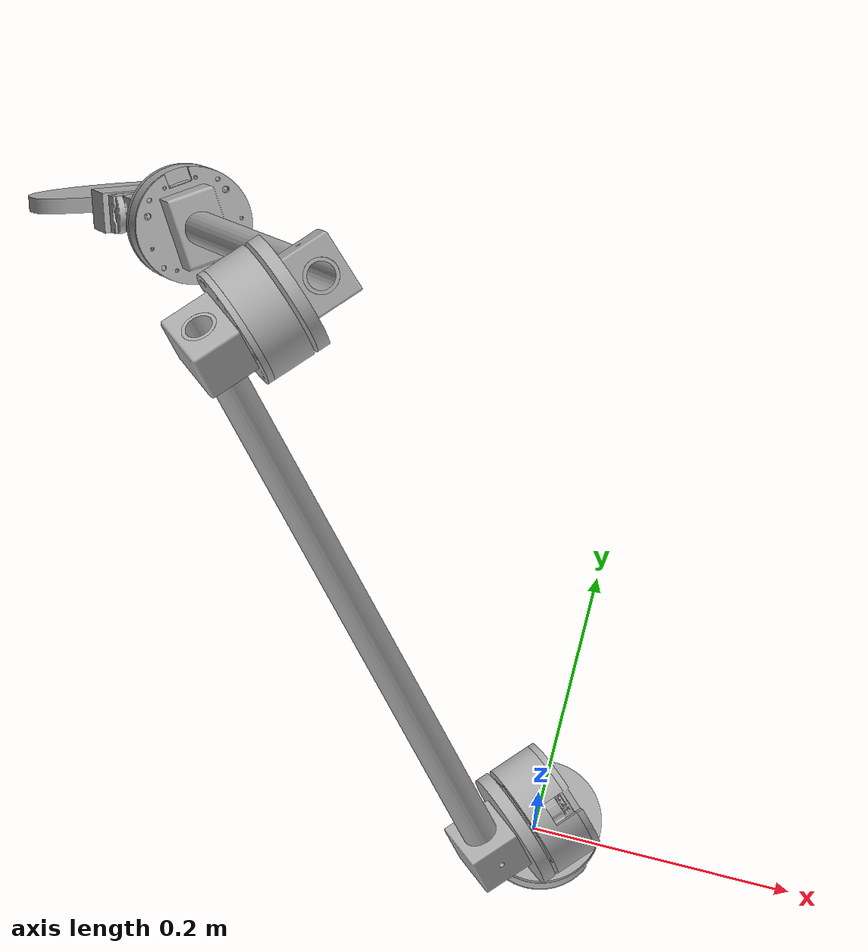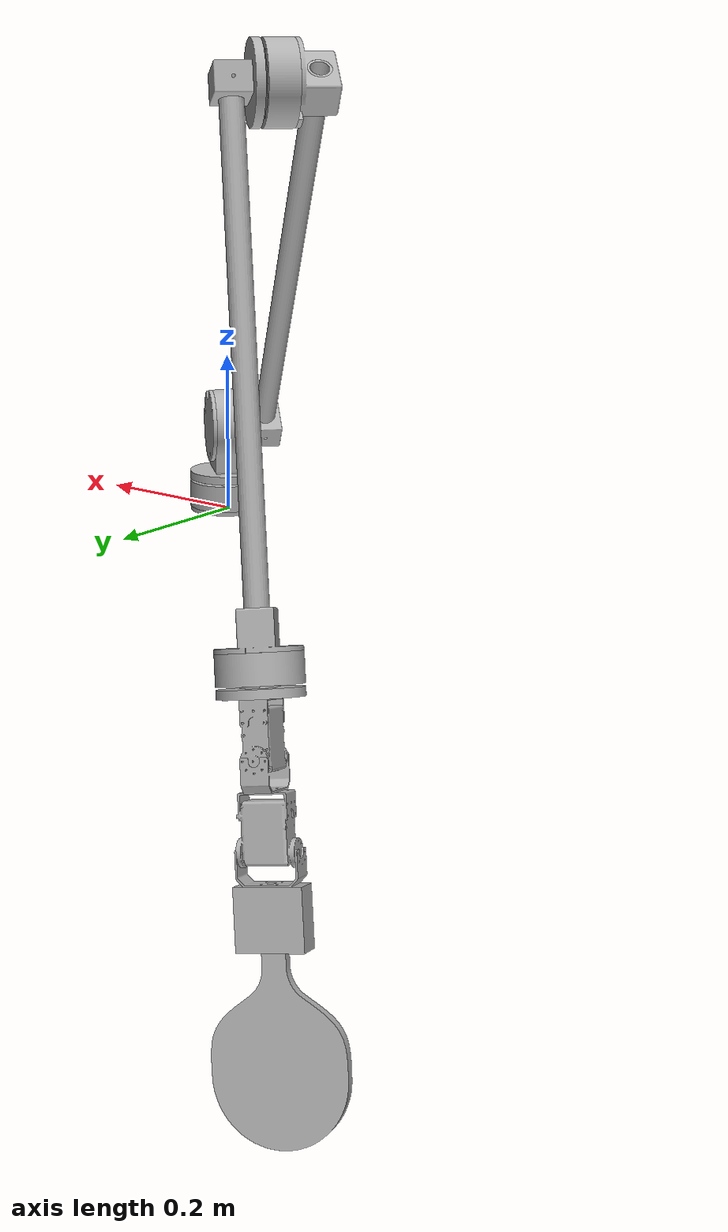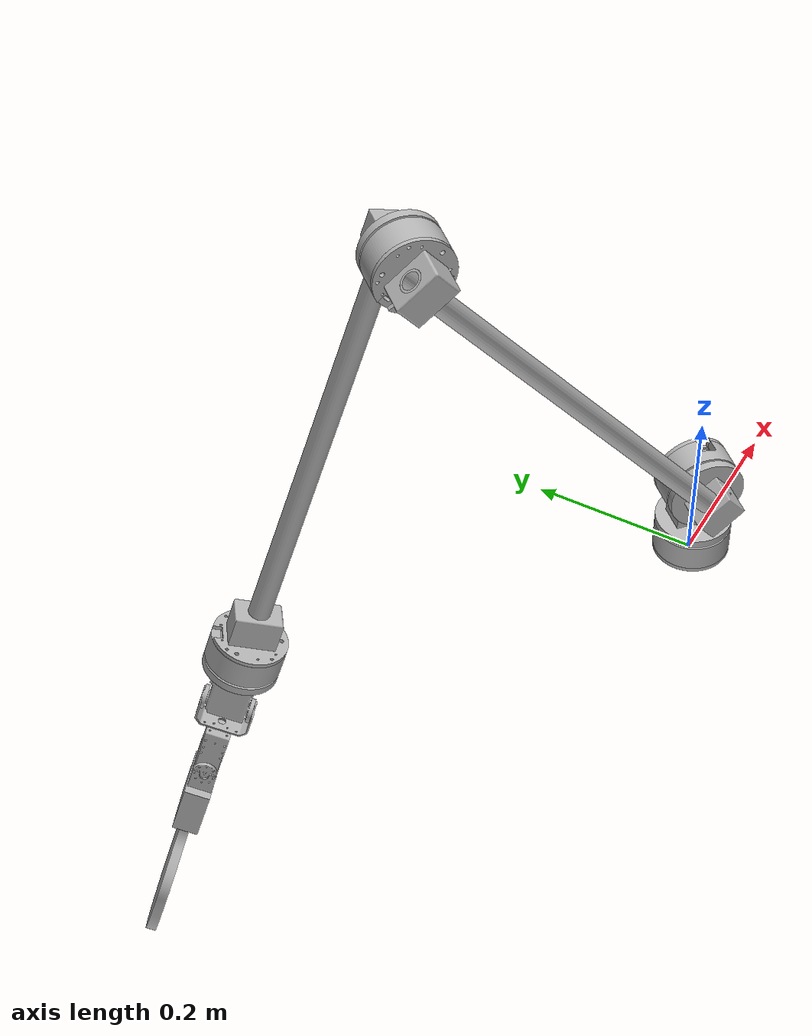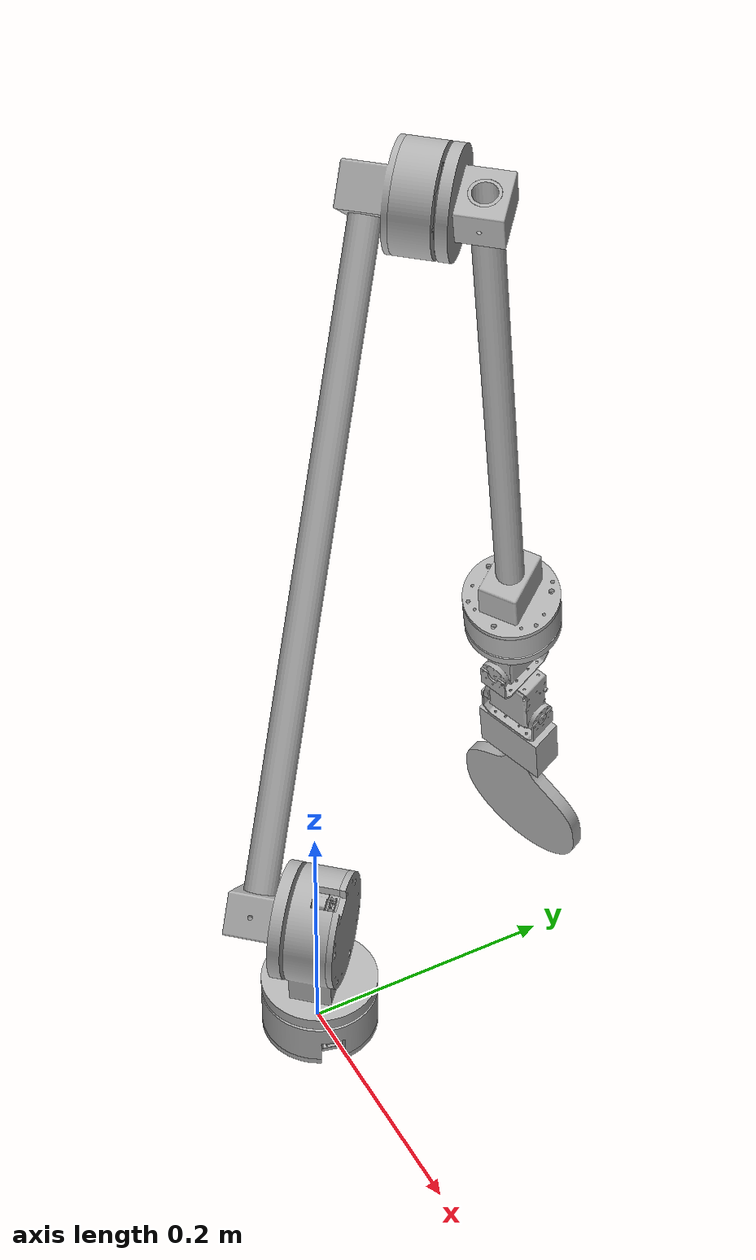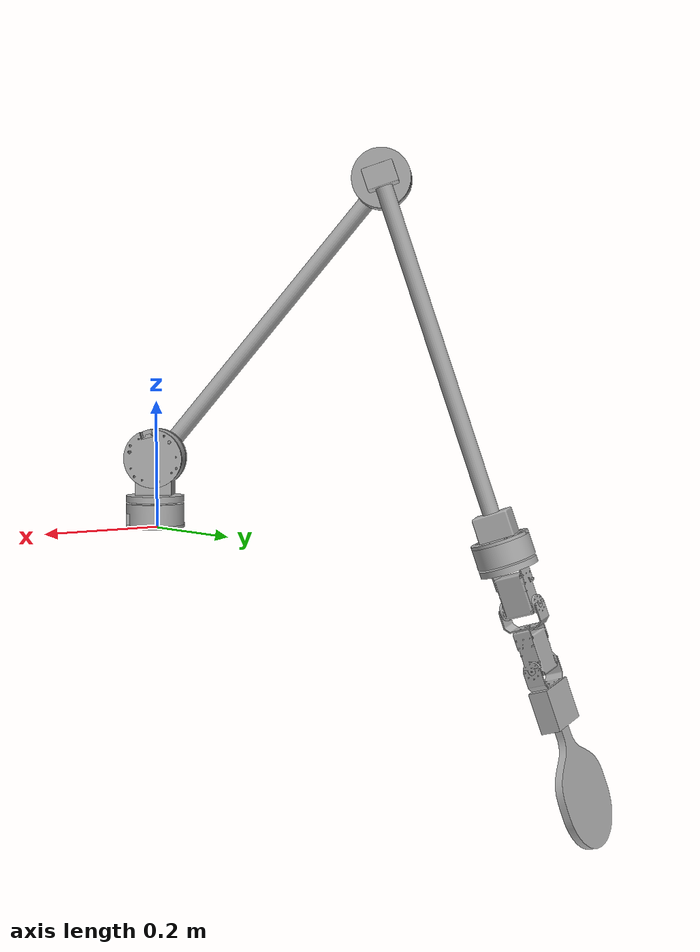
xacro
<?xml version="1.0" ?>
<robot name="assembly_fresh" xmlns:xacro="http://www.ros.org/wiki/xacro">

<xacro:include filename="$(find assembly_fresh_description)/urdf/materials.xacro" />
<xacro:include filename="$(find assembly_fresh_description)/urdf/assembly_fresh.trans" />
<xacro:include filename="$(find assembly_fresh_description)/urdf/assembly_fresh.gazebo" />
<link name="base_link">
  <inertial>
    <origin xyz="0.0025863608370087143 0.0003591420593558797 0.0025" rpy="0 0 0"/>
    <mass value="0.24711216388615834"/>
    <inertia ixx="0.000134" iyy="0.000121" izz="0.000254" ixy="-3e-06" iyz="-0.0" ixz="-0.0"/>
  </inertial>
  <visual>
    <origin xyz="0 0 0" rpy="0 0 0"/>
    <geometry>
      <mesh filename="package://assembly_fresh_description/meshes/base_link.stl" scale="0.001 0.001 0.001"/>
    </geometry>
    <material name="silver"/>
  </visual>
  <collision>
    <origin xyz="0 0 0" rpy="0 0 0"/>
    <geometry>
      <mesh filename="package://assembly_fresh_description/meshes/base_link.stl" scale="0.001 0.001 0.001"/>
    </geometry>
  </collision>
</link>

<link name="base_plate_1_1">
  <inertial>
    <origin xyz="-0.0020763445014935706 0.0005204160767345057 0.01704468393800585" rpy="0 0 0"/>
    <mass value="0.6163205395344308"/>
    <inertia ixx="0.00061" iyy="0.000561" izz="0.001055" ixy="-1.3e-05" iyz="2e-06" ixz="-8e-06"/>
  </inertial>
  <visual>
    <origin xyz="-0.004 -0.0 -0.005" rpy="0 0 0"/>
    <geometry>
      <mesh filename="package://assembly_fresh_description/meshes/base_plate_1_1.stl" scale="0.001 0.001 0.001"/>
    </geometry>
    <material name="silver"/>
  </visual>
  <collision>
    <origin xyz="-0.004 -0.0 -0.005" rpy="0 0 0"/>
    <geometry>
      <mesh filename="package://assembly_fresh_description/meshes/base_plate_1_1.stl" scale="0.001 0.001 0.001"/>
    </geometry>
  </collision>
</link>

<link name="CyberGearmotor0_1">
  <inertial>
    <origin xyz="0.000365315533304841 -5.172106987113345e-05 0.02003417131152461" rpy="0 0 0"/>
    <mass value="0.8824867869493727"/>
    <inertia ixx="0.000352" iyy="0.000363" izz="0.000583" ixy="2e-06" iyz="0.0" ixz="1e-06"/>
  </inertial>
  <visual>
    <origin xyz="-0.004 -0.0 -0.005" rpy="0 0 0"/>
    <geometry>
      <mesh filename="package://assembly_fresh_description/meshes/CyberGearmotor0_1.stl" scale="0.001 0.001 0.001"/>
    </geometry>
    <material name="silver"/>
  </visual>
  <collision>
    <origin xyz="-0.004 -0.0 -0.005" rpy="0 0 0"/>
    <geometry>
      <mesh filename="package://assembly_fresh_description/meshes/CyberGearmotor0_1.stl" scale="0.001 0.001 0.001"/>
    </geometry>
  </collision>
</link>

<link name="link1_plate_1">
  <inertial>
    <origin xyz="5.960401183030539e-11 1.225297641127554e-14 0.004999999999997562" rpy="0 0 0"/>
    <mass value="0.5059761078295193"/>
    <inertia ixx="0.000282" iyy="0.000282" izz="0.000555" ixy="-0.0" iyz="-0.0" ixz="-0.0"/>
  </inertial>
  <visual>
    <origin xyz="-0.004 0.0 -0.0413" rpy="0 0 0"/>
    <geometry>
      <mesh filename="package://assembly_fresh_description/meshes/link1_plate_1.stl" scale="0.001 0.001 0.001"/>
    </geometry>
    <material name="silver"/>
  </visual>
  <collision>
    <origin xyz="-0.004 0.0 -0.0413" rpy="0 0 0"/>
    <geometry>
      <mesh filename="package://assembly_fresh_description/meshes/link1_plate_1.stl" scale="0.001 0.001 0.001"/>
    </geometry>
  </collision>
</link>

<link name="link2_mount_1">
  <inertial>
    <origin xyz="-0.00022323700771801226 -0.000465305564484666 0.04377354303706674" rpy="0 0 0"/>
    <mass value="0.833278415256699"/>
    <inertia ixx="0.001269" iyy="0.00122" izz="0.000701" ixy="-0.00027" iyz="1.9e-05" ixz="6e-06"/>
  </inertial>
  <visual>
    <origin xyz="-0.004 0.0 -0.0513" rpy="0 0 0"/>
    <geometry>
      <mesh filename="package://assembly_fresh_description/meshes/link2_mount_1.stl" scale="0.001 0.001 0.001"/>
    </geometry>
    <material name="silver"/>
  </visual>
  <collision>
    <origin xyz="-0.004 0.0 -0.0513" rpy="0 0 0"/>
    <geometry>
      <mesh filename="package://assembly_fresh_description/meshes/link2_mount_1.stl" scale="0.001 0.001 0.001"/>
    </geometry>
  </collision>
</link>

<link name="link3_mount_v2_1">
  <inertial>
    <origin xyz="0.014798839950544904 -0.0134060990606749 1.3164900525275414e-07" rpy="0 0 0"/>
    <mass value="0.3794232112987054"/>
    <inertia ixx="0.000125" iyy="0.000122" izz="0.000158" ixy="-1.5e-05" iyz="-1.5e-05" ixz="-1.3e-05"/>
  </inertial>
  <visual>
    <origin xyz="-0.025682 0.019724 -0.110217" rpy="0 0 0"/>
    <geometry>
      <mesh filename="package://assembly_fresh_description/meshes/link3_mount_v2_1.stl" scale="0.001 0.001 0.001"/>
    </geometry>
    <material name="silver"/>
  </visual>
  <collision>
    <origin xyz="-0.025682 0.019724 -0.110217" rpy="0 0 0"/>
    <geometry>
      <mesh filename="package://assembly_fresh_description/meshes/link3_mount_v2_1.stl" scale="0.001 0.001 0.001"/>
    </geometry>
  </collision>
</link>

<link name="link3_1">
  <inertial>
    <origin xyz="-0.06643377946131569 -0.0733351225065976 0.28321105107869426" rpy="0 0 0"/>
    <mass value="1.01226527272846"/>
    <inertia ixx="0.028955" iyy="0.02863" izz="0.003441" ixy="-0.00164" iyz="0.006991" ixz="0.006333"/>
  </inertial>
  <visual>
    <origin xyz="-0.044315 0.028945 -0.093972" rpy="0 0 0"/>
    <geometry>
      <mesh filename="package://assembly_fresh_description/meshes/link3_1.stl" scale="0.001 0.001 0.001"/>
    </geometry>
    <material name="silver"/>
  </visual>
  <collision>
    <origin xyz="-0.044315 0.028945 -0.093972" rpy="0 0 0"/>
    <geometry>
      <mesh filename="package://assembly_fresh_description/meshes/link3_1.stl" scale="0.001 0.001 0.001"/>
    </geometry>
  </collision>
</link>

<link name="link4_plate_1">
  <inertial>
    <origin xyz="-0.0007882741415668887 0.009926271836401573 -0.018085756763864813" rpy="0 0 0"/>
    <mass value="0.76603914839681"/>
    <inertia ixx="0.000447" iyy="0.000425" izz="0.000456" ixy="-5.9e-05" iyz="-2.5e-05" ixz="-2e-05"/>
  </inertial>
  <visual>
    <origin xyz="0.088553 0.175615 -0.660394" rpy="0 0 0"/>
    <geometry>
      <mesh filename="package://assembly_fresh_description/meshes/link4_plate_1.stl" scale="0.001 0.001 0.001"/>
    </geometry>
    <material name="silver"/>
  </visual>
  <collision>
    <origin xyz="0.088553 0.175615 -0.660394" rpy="0 0 0"/>
    <geometry>
      <mesh filename="package://assembly_fresh_description/meshes/link4_plate_1.stl" scale="0.001 0.001 0.001"/>
    </geometry>
  </collision>
</link>

<link name="CyberGearmotor2_1">
  <inertial>
    <origin xyz="-0.01508924516183388 0.013184424295532016 -8.272998982084001e-05" rpy="0 0 0"/>
    <mass value="0.8824867869493727"/>
    <inertia ixx="0.00048" iyy="0.000456" izz="0.000362" ixy="-0.000114" iyz="-2e-06" ixz="-2e-06"/>
  </inertial>
  <visual>
    <origin xyz="0.102807 0.154114 -0.642176" rpy="0 0 0"/>
    <geometry>
      <mesh filename="package://assembly_fresh_description/meshes/CyberGearmotor2_1.stl" scale="0.001 0.001 0.001"/>
    </geometry>
    <material name="silver"/>
  </visual>
  <collision>
    <origin xyz="0.102807 0.154114 -0.642176" rpy="0 0 0"/>
    <geometry>
      <mesh filename="package://assembly_fresh_description/meshes/CyberGearmotor2_1.stl" scale="0.001 0.001 0.001"/>
    </geometry>
  </collision>
</link>

<link name="link4_mount_1">
  <inertial>
    <origin xyz="-0.012061280691187726 0.011635227022074784 0.00017645497799034793" rpy="0 0 0"/>
    <mass value="0.642760749698807"/>
    <inertia ixx="0.000885" iyy="0.000837" izz="0.000607" ixy="-0.000242" iyz="3e-06" ixz="3e-06"/>
  </inertial>
  <visual>
    <origin xyz="0.102807 0.154114 -0.642176" rpy="0 0 0"/>
    <geometry>
      <mesh filename="package://assembly_fresh_description/meshes/link4_mount_1.stl" scale="0.001 0.001 0.001"/>
    </geometry>
    <material name="silver"/>
  </visual>
  <collision>
    <origin xyz="0.102807 0.154114 -0.642176" rpy="0 0 0"/>
    <geometry>
      <mesh filename="package://assembly_fresh_description/meshes/link4_mount_1.stl" scale="0.001 0.001 0.001"/>
    </geometry>
  </collision>
</link>

<link name="link4_plate1_1">
  <inertial>
    <origin xyz="-0.003705573041466792 0.0033565001714916665 7.96668527813793e-08" rpy="0 0 0"/>
    <mass value="0.5039448046653104"/>
    <inertia ixx="0.000429" iyy="0.000402" izz="0.00028" ixy="-0.000135" iyz="0.0" ixz="0.0"/>
  </inertial>
  <visual>
    <origin xyz="0.129858 0.129608 -0.642176" rpy="0 0 0"/>
    <geometry>
      <mesh filename="package://assembly_fresh_description/meshes/link4_plate1_1.stl" scale="0.001 0.001 0.001"/>
    </geometry>
    <material name="silver"/>
  </visual>
  <collision>
    <origin xyz="0.129858 0.129608 -0.642176" rpy="0 0 0"/>
    <geometry>
      <mesh filename="package://assembly_fresh_description/meshes/link4_plate1_1.stl" scale="0.001 0.001 0.001"/>
    </geometry>
  </collision>
</link>

<link name="link5_plate_yz_plane_1">
  <inertial>
    <origin xyz="0.008044899453001686 0.00867064761752634 0.0046286023266077225" rpy="0 0 0"/>
    <mass value="0.7598819212290874"/>
    <inertia ixx="0.000459" iyy="0.000477" izz="0.000385" ixy="2.1e-05" iyz="2.3e-05" ixz="4.6e-05"/>
  </inertial>
  <visual>
    <origin xyz="0.511008 0.505669 -0.410122" rpy="0 0 0"/>
    <geometry>
      <mesh filename="package://assembly_fresh_description/meshes/link5_plate_yz_plane_1.stl" scale="0.001 0.001 0.001"/>
    </geometry>
    <material name="silver"/>
  </visual>
  <collision>
    <origin xyz="0.511008 0.505669 -0.410122" rpy="0 0 0"/>
    <geometry>
      <mesh filename="package://assembly_fresh_description/meshes/link5_plate_yz_plane_1.stl" scale="0.001 0.001 0.001"/>
    </geometry>
  </collision>
</link>

<link name="CyberGearmotor3_1">
  <inertial>
    <origin xyz="-0.012523832089333498 -0.013637941193536784 -0.007658944044402927" rpy="0 0 0"/>
    <mass value="0.8824867869493727"/>
    <inertia ixx="0.000445" iyy="0.000464" izz="0.000389" ixy="9.2e-05" iyz="6e-05" ixz="5.8e-05"/>
  </inertial>
  <visual>
    <origin xyz="0.514088 0.509068 -0.408131" rpy="0 0 0"/>
    <geometry>
      <mesh filename="package://assembly_fresh_description/meshes/CyberGearmotor3_1.stl" scale="0.001 0.001 0.001"/>
    </geometry>
    <material name="silver"/>
  </visual>
  <collision>
    <origin xyz="0.514088 0.509068 -0.408131" rpy="0 0 0"/>
    <geometry>
      <mesh filename="package://assembly_fresh_description/meshes/CyberGearmotor3_1.stl" scale="0.001 0.001 0.001"/>
    </geometry>
  </collision>
</link>

<link name="RDS5160_motor0_1">
  <inertial>
    <origin xyz="-0.025051801374162186 -0.027899121010842354 -0.01697952727207397" rpy="0 0 0"/>
    <mass value="0.5371425416182003"/>
    <inertia ixx="0.000333" iyy="0.000336" izz="0.000307" ixy="-9.7e-05" iyz="-4.5e-05" ixz="-5e-06"/>
  </inertial>
  <visual>
    <origin xyz="0.542725 0.54068 -0.389616" rpy="0 0 0"/>
    <geometry>
      <mesh filename="package://assembly_fresh_description/meshes/RDS5160_motor0_1.stl" scale="0.001 0.001 0.001"/>
    </geometry>
    <material name="silver"/>
  </visual>
  <collision>
    <origin xyz="0.542725 0.54068 -0.389616" rpy="0 0 0"/>
    <geometry>
      <mesh filename="package://assembly_fresh_description/meshes/RDS5160_motor0_1.stl" scale="0.001 0.001 0.001"/>
    </geometry>
  </collision>
</link>

<link name="link5_plate1_1">
  <inertial>
    <origin xyz="-0.0030797484843688716 -0.0033992812232509495 -0.0019912933422427948" rpy="0 0 0"/>
    <mass value="0.5059456318485572"/>
    <inertia ixx="0.000385" iyy="0.000408" izz="0.000325" ixy="0.000114" iyz="7.4e-05" ixz="6.7e-05"/>
  </inertial>
  <visual>
    <origin xyz="0.536566 0.533882 -0.393598" rpy="0 0 0"/>
    <geometry>
      <mesh filename="package://assembly_fresh_description/meshes/link5_plate1_1.stl" scale="0.001 0.001 0.001"/>
    </geometry>
    <material name="silver"/>
  </visual>
  <collision>
    <origin xyz="0.536566 0.533882 -0.393598" rpy="0 0 0"/>
    <geometry>
      <mesh filename="package://assembly_fresh_description/meshes/link5_plate1_1.stl" scale="0.001 0.001 0.001"/>
    </geometry>
  </collision>
</link>

<link name="RDS5160_motor1_1">
  <inertial>
    <origin xyz="-0.020428397606103044 -0.03260690591489335 -0.014617587981063329" rpy="0 0 0"/>
    <mass value="0.5371425416182003"/>
    <inertia ixx="0.000315" iyy="0.00026" izz="0.000401" ixy="-3.1e-05" iyz="-4e-05" ixz="-6.4e-05"/>
  </inertial>
  <visual>
    <origin xyz="0.598143 0.608781 -0.353991" rpy="0 0 0"/>
    <geometry>
      <mesh filename="package://assembly_fresh_description/meshes/RDS5160_motor1_1.stl" scale="0.001 0.001 0.001"/>
    </geometry>
    <material name="silver"/>
  </visual>
  <collision>
    <origin xyz="0.598143 0.608781 -0.353991" rpy="0 0 0"/>
    <geometry>
      <mesh filename="package://assembly_fresh_description/meshes/RDS5160_motor1_1.stl" scale="0.001 0.001 0.001"/>
    </geometry>
  </collision>
</link>

<link name="RDS5160_support_bracket_0_1">
  <inertial>
    <origin xyz="-0.026141794490403214 -0.022012905197835164 0.021400460668582477" rpy="0 0 0"/>
    <mass value="0.0542063443864775"/>
    <inertia ixx="3.6e-05" iyy="4.1e-05" izz="1.7e-05" ixy="-3e-06" iyz="3e-06" ixz="1.2e-05"/>
  </inertial>
  <visual>
    <origin xyz="0.566822 0.578797 -0.336256" rpy="0 0 0"/>
    <geometry>
      <mesh filename="package://assembly_fresh_description/meshes/RDS5160_support_bracket_0_1.stl" scale="0.001 0.001 0.001"/>
    </geometry>
    <material name="silver"/>
  </visual>
  <collision>
    <origin xyz="0.566822 0.578797 -0.336256" rpy="0 0 0"/>
    <geometry>
      <mesh filename="package://assembly_fresh_description/meshes/RDS5160_support_bracket_0_1.stl" scale="0.001 0.001 0.001"/>
    </geometry>
  </collision>
</link>

<link name="RDS5160_support_bracket_1_1">
  <inertial>
    <origin xyz="-0.03166289240566722 0.004815278230617781 -0.024498610861725945" rpy="0 0 0"/>
    <mass value="0.0542063443864775"/>
    <inertia ixx="2.5e-05" iyy="3e-05" izz="3.9e-05" ixy="1.4e-05" iyz="5e-06" ixz="-7e-06"/>
  </inertial>
  <visual>
    <origin xyz="0.605775 0.676933 -0.340655" rpy="0 0 0"/>
    <geometry>
      <mesh filename="package://assembly_fresh_description/meshes/RDS5160_support_bracket_1_1.stl" scale="0.001 0.001 0.001"/>
    </geometry>
    <material name="silver"/>
  </visual>
  <collision>
    <origin xyz="0.605775 0.676933 -0.340655" rpy="0 0 0"/>
    <geometry>
      <mesh filename="package://assembly_fresh_description/meshes/RDS5160_support_bracket_1_1.stl" scale="0.001 0.001 0.001"/>
    </geometry>
  </collision>
</link>

<link name="paddle_bracket_1">
  <inertial>
    <origin xyz="-0.009877082480452049 -0.021828414084217873 -0.021500211797829127" rpy="0 0 0"/>
    <mass value="1.0732449684914942"/>
    <inertia ixx="0.000678" iyy="0.000648" izz="0.000782" ixy="0.000138" iyz="-5.8e-05" ixz="-0.000151"/>
  </inertial>
  <visual>
    <origin xyz="0.640564 0.679026 -0.309352" rpy="0 0 0"/>
    <geometry>
      <mesh filename="package://assembly_fresh_description/meshes/paddle_bracket_1.stl" scale="0.001 0.001 0.001"/>
    </geometry>
    <material name="silver"/>
  </visual>
  <collision>
    <origin xyz="0.640564 0.679026 -0.309352" rpy="0 0 0"/>
    <geometry>
      <mesh filename="package://assembly_fresh_description/meshes/paddle_bracket_1.stl" scale="0.001 0.001 0.001"/>
    </geometry>
  </collision>
</link>

<link name="paddle_1">
  <inertial>
    <origin xyz="-0.048116929351046944 -0.10633715617695472 -0.10473577583411162" rpy="0 0 0"/>
    <mass value="2.095651286416409"/>
    <inertia ixx="0.007337" iyy="0.005297" izz="0.006128" ixy="-0.000282" iyz="-0.002653" ixz="-0.00191"/>
  </inertial>
  <visual>
    <origin xyz="0.644228 0.687123 -0.301377" rpy="0 0 0"/>
    <geometry>
      <mesh filename="package://assembly_fresh_description/meshes/paddle_1.stl" scale="0.001 0.001 0.001"/>
    </geometry>
    <material name="silver"/>
  </visual>
  <collision>
    <origin xyz="0.644228 0.687123 -0.301377" rpy="0 0 0"/>
    <geometry>
      <mesh filename="package://assembly_fresh_description/meshes/paddle_1.stl" scale="0.001 0.001 0.001"/>
    </geometry>
  </collision>
</link>

<link name="link5_mount_1">
  <inertial>
    <origin xyz="-0.009899179137885294 -0.011601445108479047 -0.006947504074321209" rpy="0 0 0"/>
    <mass value="0.6542346841284543"/>
    <inertia ixx="0.000821" iyy="0.000857" izz="0.000704" ixy="0.00021" iyz="0.000141" ixz="0.00012"/>
  </inertial>
  <visual>
    <origin xyz="0.514088 0.509068 -0.408131" rpy="0 0 0"/>
    <geometry>
      <mesh filename="package://assembly_fresh_description/meshes/link5_mount_1.stl" scale="0.001 0.001 0.001"/>
    </geometry>
    <material name="silver"/>
  </visual>
  <collision>
    <origin xyz="0.514088 0.509068 -0.408131" rpy="0 0 0"/>
    <geometry>
      <mesh filename="package://assembly_fresh_description/meshes/link5_mount_1.stl" scale="0.001 0.001 0.001"/>
    </geometry>
  </collision>
</link>

<link name="link3_plate_1">
  <inertial>
    <origin xyz="0.0037054771091581326 -0.00335711935758223 1.5185625962255145e-07" rpy="0 0 0"/>
    <mass value="0.5079425709661909"/>
    <inertia ixx="0.000435" iyy="0.000408" izz="0.000284" ixy="-0.000137" iyz="-0.0" ixz="-0.0"/>
  </inertial>
  <visual>
    <origin xyz="-0.018271 0.01301 -0.110217" rpy="0 0 0"/>
    <geometry>
      <mesh filename="package://assembly_fresh_description/meshes/link3_plate_1.stl" scale="0.001 0.001 0.001"/>
    </geometry>
    <material name="silver"/>
  </visual>
  <collision>
    <origin xyz="-0.018271 0.01301 -0.110217" rpy="0 0 0"/>
    <geometry>
      <mesh filename="package://assembly_fresh_description/meshes/link3_plate_1.stl" scale="0.001 0.001 0.001"/>
    </geometry>
  </collision>
</link>

<link name="link4_plate1_mount_1">
  <inertial>
    <origin xyz="-0.014798917960383517 0.013406499658877052 8.818982255576202e-08" rpy="0 0 0"/>
    <mass value="0.3794232112987054"/>
    <inertia ixx="0.000145" iyy="0.000147" izz="0.000112" ixy="8e-06" iyz="1.7e-05" ixz="1.5e-05"/>
  </inertial>
  <visual>
    <origin xyz="0.137269 0.122895 -0.642176" rpy="0 0 0"/>
    <geometry>
      <mesh filename="package://assembly_fresh_description/meshes/link4_plate1_mount_1.stl" scale="0.001 0.001 0.001"/>
    </geometry>
    <material name="silver"/>
  </visual>
  <collision>
    <origin xyz="0.137269 0.122895 -0.642176" rpy="0 0 0"/>
    <geometry>
      <mesh filename="package://assembly_fresh_description/meshes/link4_plate1_mount_1.stl" scale="0.001 0.001 0.001"/>
    </geometry>
  </collision>
</link>

<link name="link4_1">
  <inertial>
    <origin xyz="-0.18475706029396483 -0.20395071629877462 -0.11945305403213435" rpy="0 0 0"/>
    <mass value="1.01226527272846"/>
    <inertia ixx="0.01895" iyy="0.016439" izz="0.025637" ixy="-0.012684" iyz="-0.008201" ixz="-0.007429"/>
  </inertial>
  <visual>
    <origin xyz="0.141494 0.097768 -0.649028" rpy="0 0 0"/>
    <geometry>
      <mesh filename="package://assembly_fresh_description/meshes/link4_1.stl" scale="0.001 0.001 0.001"/>
    </geometry>
    <material name="silver"/>
  </visual>
  <collision>
    <origin xyz="0.141494 0.097768 -0.649028" rpy="0 0 0"/>
    <geometry>
      <mesh filename="package://assembly_fresh_description/meshes/link4_1.stl" scale="0.001 0.001 0.001"/>
    </geometry>
  </collision>
</link>

<link name="CyberGearmotor1_1">
  <inertial>
    <origin xyz="0.014882707352906699 -0.013412452748921127 0.0003654673298174316" rpy="0 0 0"/>
    <mass value="0.8824867869493727"/>
    <inertia ixx="0.000484" iyy="0.000462" izz="0.000352" ixy="-0.00011" iyz="-2e-06" ixz="-1e-06"/>
  </inertial>
  <visual>
    <origin xyz="0.008632 -0.011361 -0.110217" rpy="0 0 0"/>
    <geometry>
      <mesh filename="package://assembly_fresh_description/meshes/CyberGearmotor1_1.stl" scale="0.001 0.001 0.001"/>
    </geometry>
    <material name="silver"/>
  </visual>
  <collision>
    <origin xyz="0.008632 -0.011361 -0.110217" rpy="0 0 0"/>
    <geometry>
      <mesh filename="package://assembly_fresh_description/meshes/CyberGearmotor1_1.stl" scale="0.001 0.001 0.001"/>
    </geometry>
  </collision>
</link>

<link name="link2_plate_1">
  <inertial>
    <origin xyz="-0.002105376375481893 0.0013989411864931533 -0.0014514938507842468" rpy="0 0 0"/>
    <mass value="0.2451108307278639"/>
    <inertia ixx="0.000192" iyy="0.000179" izz="0.000132" ixy="-6.5e-05" iyz="3e-06" ixz="2e-06"/>
  </inertial>
  <visual>
    <origin xyz="0.008632 -0.011361 -0.110217" rpy="0 0 0"/>
    <geometry>
      <mesh filename="package://assembly_fresh_description/meshes/link2_plate_1.stl" scale="0.001 0.001 0.001"/>
    </geometry>
    <material name="silver"/>
  </visual>
  <collision>
    <origin xyz="0.008632 -0.011361 -0.110217" rpy="0 0 0"/>
    <geometry>
      <mesh filename="package://assembly_fresh_description/meshes/link2_plate_1.stl" scale="0.001 0.001 0.001"/>
    </geometry>
  </collision>
</link>

<joint name="Rigid 1" type="fixed">
  <origin xyz="0.004 0.0 0.005" rpy="0 0 0"/>
  <parent link="base_link"/>
  <child link="base_plate_1_1"/>
</joint>

<joint name="Rigid 2" type="fixed">
  <origin xyz="0.004 0.0 0.005" rpy="0 0 0"/>
  <parent link="base_link"/>
  <child link="CyberGearmotor0_1"/>
</joint>

<joint name="joint0" type="continuous">
  <origin xyz="0.0 -0.0 0.0363" rpy="0 0 0"/>
  <parent link="CyberGearmotor0_1"/>
  <child link="link1_plate_1"/>
  <axis xyz="-0.0 -0.0 -1.0"/>
</joint>

<joint name="Rigid 5" type="fixed">
  <origin xyz="0.0 0.0 0.01" rpy="0 0 0"/>
  <parent link="link1_plate_1"/>
  <child link="link2_mount_1"/>
</joint>

<joint name="Rigid 9" type="fixed">
  <origin xyz="0.007411 -0.006714 0.0" rpy="0 0 0"/>
  <parent link="link3_plate_1"/>
  <child link="link3_mount_v2_1"/>
</joint>

<joint name="Rigid 10" type="fixed">
  <origin xyz="0.018633 -0.009221 -0.016245" rpy="0 0 0"/>
  <parent link="link3_mount_v2_1"/>
  <child link="link3_1"/>
</joint>

<joint name="Rigid 11" type="fixed">
  <origin xyz="-0.132868 -0.14667 0.566422" rpy="0 0 0"/>
  <parent link="link3_1"/>
  <child link="link4_plate_1"/>
</joint>

<joint name="Rigid 12" type="fixed">
  <origin xyz="-0.014254 0.021501 -0.018218" rpy="0 0 0"/>
  <parent link="link4_plate_1"/>
  <child link="CyberGearmotor2_1"/>
</joint>

<joint name="Rigid 13" type="fixed">
  <origin xyz="-0.014254 0.021501 -0.018218" rpy="0 0 0"/>
  <parent link="link4_plate_1"/>
  <child link="link4_mount_1"/>
</joint>

<joint name="joint2" type="continuous">
  <origin xyz="-0.027051 0.024506 0.0" rpy="0 0 0"/>
  <parent link="CyberGearmotor2_1"/>
  <child link="link4_plate1_1"/>
  <axis xyz="-0.741118 0.671375 0.0"/>
</joint>

<joint name="Rigid 17" type="fixed">
  <origin xyz="-0.369514 -0.407901 -0.238906" rpy="0 0 0"/>
  <parent link="link4_1"/>
  <child link="link5_plate_yz_plane_1"/>
</joint>

<joint name="Rigid 18" type="fixed">
  <origin xyz="-0.00308 -0.003399 -0.001991" rpy="0 0 0"/>
  <parent link="link5_plate_yz_plane_1"/>
  <child link="CyberGearmotor3_1"/>
</joint>

<joint name="Rigid 19" type="fixed">
  <origin xyz="-0.006159 -0.006798 -0.003982" rpy="0 0 0"/>
  <parent link="link5_plate1_1"/>
  <child link="RDS5160_motor0_1"/>
</joint>

<joint name="joint3" type="continuous">
  <origin xyz="-0.022478 -0.024814 -0.014533" rpy="0 0 0"/>
  <parent link="CyberGearmotor3_1"/>
  <child link="link5_plate1_1"/>
  <axis xyz="-0.615858 -0.679834 -0.398177"/>
</joint>

<joint name="Rigid 22" type="fixed">
  <origin xyz="-0.031321 -0.029984 0.017735" rpy="0 0 0"/>
  <parent link="RDS5160_support_bracket_0_1"/>
  <child link="RDS5160_motor1_1"/>
</joint>

<joint name="joint4" type="continuous">
  <origin xyz="-0.024097 -0.038117 -0.05336" rpy="0 0 0"/>
  <parent link="RDS5160_motor0_1"/>
  <child link="RDS5160_support_bracket_0_1"/>
  <axis xyz="0.43746 0.125254 -0.890472"/>
</joint>

<joint name="joint5" type="continuous">
  <origin xyz="-0.007632 -0.068152 -0.013336" rpy="0 0 0"/>
  <parent link="RDS5160_motor1_1"/>
  <child link="RDS5160_support_bracket_1_1"/>
  <axis xyz="0.74177 -0.61005 0.278597"/>
</joint>

<joint name="Rigid 25" type="fixed">
  <origin xyz="-0.034789 -0.002093 -0.031303" rpy="0 0 0"/>
  <parent link="RDS5160_support_bracket_1_1"/>
  <child link="paddle_bracket_1"/>
</joint>

<joint name="Rigid 26" type="fixed">
  <origin xyz="-0.003664 -0.008097 -0.007975" rpy="0 0 0"/>
  <parent link="paddle_bracket_1"/>
  <child link="paddle_1"/>
</joint>

<joint name="Rigid 27" type="fixed">
  <origin xyz="-0.00308 -0.003399 -0.001991" rpy="0 0 0"/>
  <parent link="link5_plate_yz_plane_1"/>
  <child link="link5_mount_1"/>
</joint>

<joint name="Revolute 30" type="continuous">
  <origin xyz="0.026903 -0.024371 0.0" rpy="0 0 0"/>
  <parent link="CyberGearmotor1_1"/>
  <child link="link3_plate_1"/>
  <axis xyz="0.741118 -0.671375 -0.0"/>
</joint>

<joint name="Rigid 31" type="fixed">
  <origin xyz="-0.007411 0.006713 0.0" rpy="0 0 0"/>
  <parent link="link4_plate1_1"/>
  <child link="link4_plate1_mount_1"/>
</joint>

<joint name="Rigid 32" type="fixed">
  <origin xyz="-0.004225 0.025127 0.006852" rpy="0 0 0"/>
  <parent link="link4_plate1_mount_1"/>
  <child link="link4_1"/>
</joint>

<joint name="Rigid 34" type="fixed">
  <origin xyz="0.0 0.0 0.0" rpy="0 0 0"/>
  <parent link="link2_plate_1"/>
  <child link="CyberGearmotor1_1"/>
</joint>

<joint name="Rigid 35" type="fixed">
  <origin xyz="-0.012632 0.011361 0.058917" rpy="0 0 0"/>
  <parent link="link2_mount_1"/>
  <child link="link2_plate_1"/>
</joint>

</robot>

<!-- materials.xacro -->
<robot name="assembly_fresh" xmlns:xacro="http://www.ros.org/wiki/xacro" >

<material name="silver">
  <color rgba="0.700 0.700 0.700 1.000"/>
</material>

</robot>

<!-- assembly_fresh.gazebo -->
<robot name="assembly_fresh" xmlns:xacro="http://www.ros.org/wiki/xacro" >

<xacro:property name="body_color" value="Gazebo/Silver" />

<gazebo>
  <plugin name="control" filename="libgazebo_ros_control.so"/>
</gazebo>
<gazebo reference="base_link">
  <material>${body_color}</material>
  <mu1>0.2</mu1>
  <mu2>0.2</mu2>
  <selfCollide>true</selfCollide>
  <gravity>true</gravity>
</gazebo>

<gazebo reference="base_plate_1_1">
  <material>${body_color}</material>
  <mu1>0.2</mu1>
  <mu2>0.2</mu2>
  <selfCollide>true</selfCollide>
</gazebo>

<gazebo reference="CyberGearmotor0_1">
  <material>${body_color}</material>
  <mu1>0.2</mu1>
  <mu2>0.2</mu2>
  <selfCollide>true</selfCollide>
</gazebo>

<gazebo reference="link1_plate_1">
  <material>${body_color}</material>
  <mu1>0.2</mu1>
  <mu2>0.2</mu2>
  <selfCollide>true</selfCollide>
</gazebo>

<gazebo reference="link2_mount_1">
  <material>${body_color}</material>
  <mu1>0.2</mu1>
  <mu2>0.2</mu2>
  <selfCollide>true</selfCollide>
</gazebo>

<gazebo reference="link3_mount_v2_1">
  <material>${body_color}</material>
  <mu1>0.2</mu1>
  <mu2>0.2</mu2>
  <selfCollide>true</selfCollide>
</gazebo>

<gazebo reference="link3_1">
  <material>${body_color}</material>
  <mu1>0.2</mu1>
  <mu2>0.2</mu2>
  <selfCollide>true</selfCollide>
</gazebo>

<gazebo reference="link4_plate_1">
  <material>${body_color}</material>
  <mu1>0.2</mu1>
  <mu2>0.2</mu2>
  <selfCollide>true</selfCollide>
</gazebo>

<gazebo reference="CyberGearmotor2_1">
  <material>${body_color}</material>
  <mu1>0.2</mu1>
  <mu2>0.2</mu2>
  <selfCollide>true</selfCollide>
</gazebo>

<gazebo reference="link4_mount_1">
  <material>${body_color}</material>
  <mu1>0.2</mu1>
  <mu2>0.2</mu2>
  <selfCollide>true</selfCollide>
</gazebo>

<gazebo reference="link4_plate1_1">
  <material>${body_color}</material>
  <mu1>0.2</mu1>
  <mu2>0.2</mu2>
  <selfCollide>true</selfCollide>
</gazebo>

<gazebo reference="link5_plate_yz_plane_1">
  <material>${body_color}</material>
  <mu1>0.2</mu1>
  <mu2>0.2</mu2>
  <selfCollide>true</selfCollide>
</gazebo>

<gazebo reference="CyberGearmotor3_1">
  <material>${body_color}</material>
  <mu1>0.2</mu1>
  <mu2>0.2</mu2>
  <selfCollide>true</selfCollide>
</gazebo>

<gazebo reference="RDS5160_motor0_1">
  <material>${body_color}</material>
  <mu1>0.2</mu1>
  <mu2>0.2</mu2>
  <selfCollide>true</selfCollide>
</gazebo>

<gazebo reference="link5_plate1_1">
  <material>${body_color}</material>
  <mu1>0.2</mu1>
  <mu2>0.2</mu2>
  <selfCollide>true</selfCollide>
</gazebo>

<gazebo reference="RDS5160_motor1_1">
  <material>${body_color}</material>
  <mu1>0.2</mu1>
  <mu2>0.2</mu2>
  <selfCollide>true</selfCollide>
</gazebo>

<gazebo reference="RDS5160_support_bracket_0_1">
  <material>${body_color}</material>
  <mu1>0.2</mu1>
  <mu2>0.2</mu2>
  <selfCollide>true</selfCollide>
</gazebo>

<gazebo reference="RDS5160_support_bracket_1_1">
  <material>${body_color}</material>
  <mu1>0.2</mu1>
  <mu2>0.2</mu2>
  <selfCollide>true</selfCollide>
</gazebo>

<gazebo reference="paddle_bracket_1">
  <material>${body_color}</material>
  <mu1>0.2</mu1>
  <mu2>0.2</mu2>
  <selfCollide>true</selfCollide>
</gazebo>

<gazebo reference="paddle_1">
  <material>${body_color}</material>
  <mu1>0.2</mu1>
  <mu2>0.2</mu2>
  <selfCollide>true</selfCollide>
</gazebo>

<gazebo reference="link5_mount_1">
  <material>${body_color}</material>
  <mu1>0.2</mu1>
  <mu2>0.2</mu2>
  <selfCollide>true</selfCollide>
</gazebo>

<gazebo reference="link3_plate_1">
  <material>${body_color}</material>
  <mu1>0.2</mu1>
  <mu2>0.2</mu2>
  <selfCollide>true</selfCollide>
</gazebo>

<gazebo reference="link4_plate1_mount_1">
  <material>${body_color}</material>
  <mu1>0.2</mu1>
  <mu2>0.2</mu2>
  <selfCollide>true</selfCollide>
</gazebo>

<gazebo reference="link4_1">
  <material>${body_color}</material>
  <mu1>0.2</mu1>
  <mu2>0.2</mu2>
  <selfCollide>true</selfCollide>
</gazebo>

<gazebo reference="CyberGearmotor1_1">
  <material>${body_color}</material>
  <mu1>0.2</mu1>
  <mu2>0.2</mu2>
  <selfCollide>true</selfCollide>
</gazebo>

<gazebo reference="link2_plate_1">
  <material>${body_color}</material>
  <mu1>0.2</mu1>
  <mu2>0.2</mu2>
  <selfCollide>true</selfCollide>
</gazebo>

</robot>
